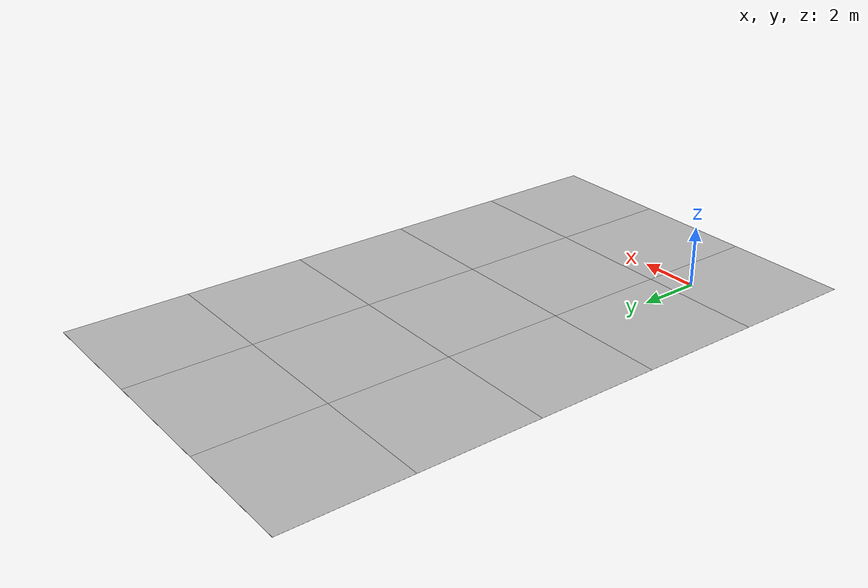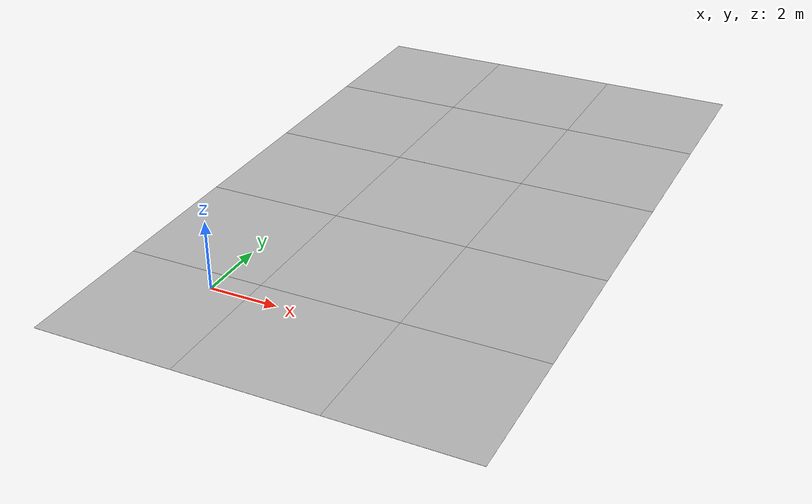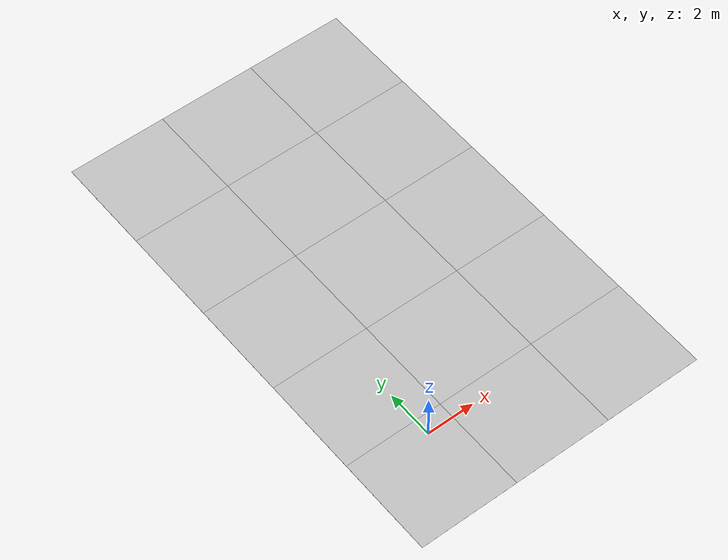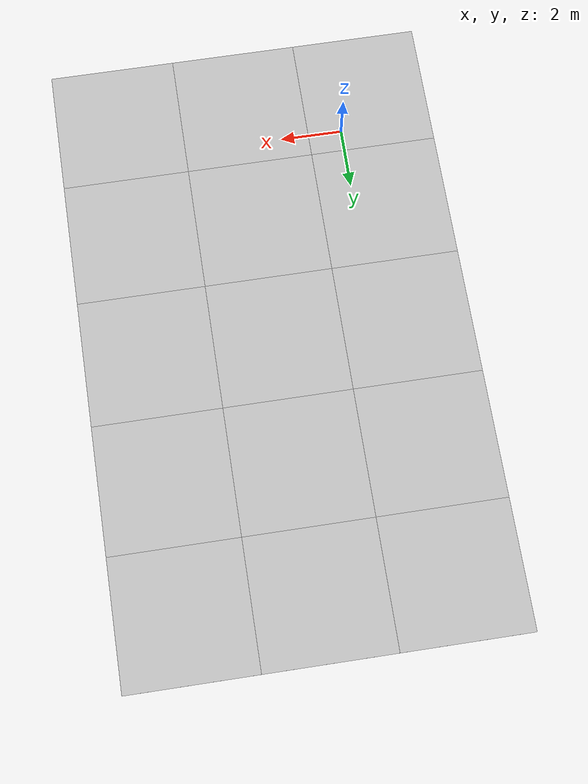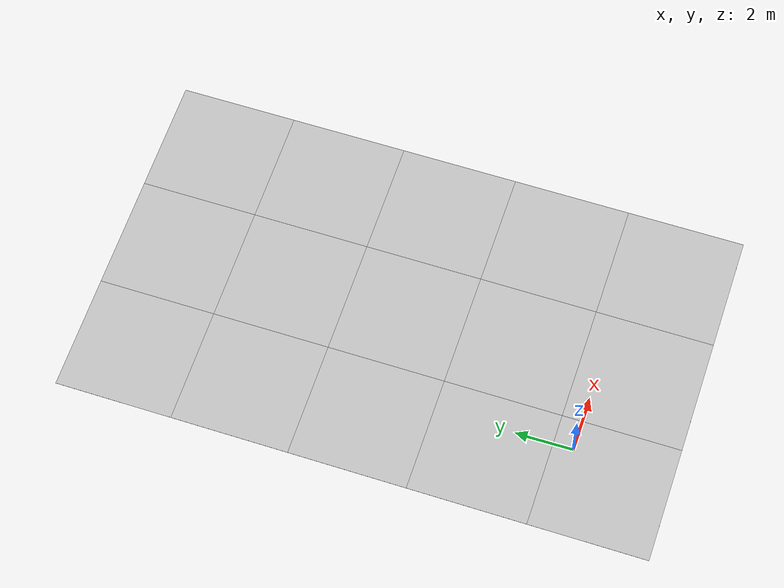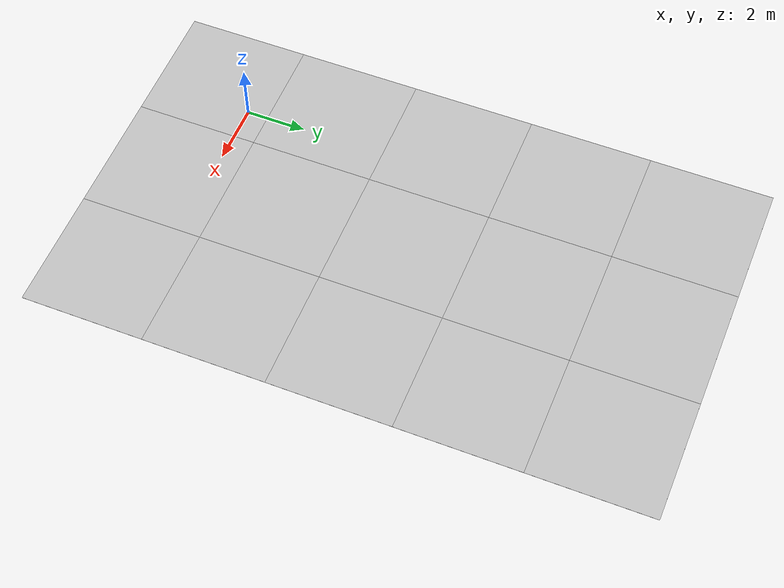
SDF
<sdf version='1.6'><world name='default'>
    <light name='sun_light' type='directional'>
      <pose frame=''>0 0 10 0 -0 0</pose>
      <diffuse>0.5 0.5 0.5 1</diffuse>
      <specular>0.1 0.1 0.1 1</specular>
      <direction>0.1 0.1 -0.9</direction>
      <attenuation>
        <range>20</range>
        <constant>0.5</constant>
        <linear>0.01</linear>
        <quadratic>0.001</quadratic>
      </attenuation>
      <cast_shadows>1</cast_shadows>
    </light>

    <model name='Tile/0-0'>
      <static>1</static>
      <link name='link'>
        <collision name='collision'>
          <geometry>
            <plane>
              <normal>0 0 1</normal>
              <size>4.096 4.096</size>
            </plane>
          </geometry>
          <surface>
            <friction>
              <ode>
                <mu>100</mu>
                <mu2>50</mu2>
              </ode>
              <torsional>
                <ode/>
              </torsional>
            </friction>
            <contact>
              <ode/>
            </contact>
            <bounce/>
          </surface>
          <max_contacts>10</max_contacts>
        </collision>
        <visual name='visual'>
          <cast_shadows>0</cast_shadows>
          <geometry>
            <plane>
              <normal>0 0 1</normal>
              <size>4.096 4.096</size>
            </plane>
          </geometry>
          <material>
            <script>
              <uri>file://materials/scripts</uri>
              <uri>file://materials/textures</uri>
              <name>Tile/d2a0822d2df9434b2a10c1df4b51959f07967b7722c4dc5c94304e16f4e1de29</name>
            </script>
          </material>
        </visual>
        <self_collide>0</self_collide>
        <enable_wind>0</enable_wind>
        <kinematic>0</kinematic>
      </link>
      <pose frame=''>-0.952 -1.3519999999999999 0 0 -0 0</pose>
    </model>

    <model name='Tile/0-1'>
      <static>1</static>
      <link name='link'>
        <collision name='collision'>
          <geometry>
            <plane>
              <normal>0 0 1</normal>
              <size>4.096 4.096</size>
            </plane>
          </geometry>
          <surface>
            <friction>
              <ode>
                <mu>100</mu>
                <mu2>50</mu2>
              </ode>
              <torsional>
                <ode/>
              </torsional>
            </friction>
            <contact>
              <ode/>
            </contact>
            <bounce/>
          </surface>
          <max_contacts>10</max_contacts>
        </collision>
        <visual name='visual'>
          <cast_shadows>0</cast_shadows>
          <geometry>
            <plane>
              <normal>0 0 1</normal>
              <size>4.096 4.096</size>
            </plane>
          </geometry>
          <material>
            <script>
              <uri>file://materials/scripts</uri>
              <uri>file://materials/textures</uri>
              <name>Tile/5eab350b8220ac9944dbdfa4ac3288c7c17e24c3bf5df0dfcf6173d64dae00a1</name>
            </script>
          </material>
        </visual>
        <self_collide>0</self_collide>
        <enable_wind>0</enable_wind>
        <kinematic>0</kinematic>
      </link>
      <pose frame=''>-0.952 2.744 0 0 -0 0</pose>
    </model>

    <model name='Tile/0-2'>
      <static>1</static>
      <link name='link'>
        <collision name='collision'>
          <geometry>
            <plane>
              <normal>0 0 1</normal>
              <size>4.096 4.096</size>
            </plane>
          </geometry>
          <surface>
            <friction>
              <ode>
                <mu>100</mu>
                <mu2>50</mu2>
              </ode>
              <torsional>
                <ode/>
              </torsional>
            </friction>
            <contact>
              <ode/>
            </contact>
            <bounce/>
          </surface>
          <max_contacts>10</max_contacts>
        </collision>
        <visual name='visual'>
          <cast_shadows>0</cast_shadows>
          <geometry>
            <plane>
              <normal>0 0 1</normal>
              <size>4.096 4.096</size>
            </plane>
          </geometry>
          <material>
            <script>
              <uri>file://materials/scripts</uri>
              <uri>file://materials/textures</uri>
              <name>Tile/5eab350b8220ac9944dbdfa4ac3288c7c17e24c3bf5df0dfcf6173d64dae00a1</name>
            </script>
          </material>
        </visual>
        <self_collide>0</self_collide>
        <enable_wind>0</enable_wind>
        <kinematic>0</kinematic>
      </link>
      <pose frame=''>-0.952 6.84 0 0 -0 0</pose>
    </model>

    <model name='Tile/0-3'>
      <static>1</static>
      <link name='link'>
        <collision name='collision'>
          <geometry>
            <plane>
              <normal>0 0 1</normal>
              <size>4.096 4.096</size>
            </plane>
          </geometry>
          <surface>
            <friction>
              <ode>
                <mu>100</mu>
                <mu2>50</mu2>
              </ode>
              <torsional>
                <ode/>
              </torsional>
            </friction>
            <contact>
              <ode/>
            </contact>
            <bounce/>
          </surface>
          <max_contacts>10</max_contacts>
        </collision>
        <visual name='visual'>
          <cast_shadows>0</cast_shadows>
          <geometry>
            <plane>
              <normal>0 0 1</normal>
              <size>4.096 4.096</size>
            </plane>
          </geometry>
          <material>
            <script>
              <uri>file://materials/scripts</uri>
              <uri>file://materials/textures</uri>
              <name>Tile/5eab350b8220ac9944dbdfa4ac3288c7c17e24c3bf5df0dfcf6173d64dae00a1</name>
            </script>
          </material>
        </visual>
        <self_collide>0</self_collide>
        <enable_wind>0</enable_wind>
        <kinematic>0</kinematic>
      </link>
      <pose frame=''>-0.952 10.936 0 0 -0 0</pose>
    </model>

    <model name='Tile/0-4'>
      <static>1</static>
      <link name='link'>
        <collision name='collision'>
          <geometry>
            <plane>
              <normal>0 0 1</normal>
              <size>4.096 4.096</size>
            </plane>
          </geometry>
          <surface>
            <friction>
              <ode>
                <mu>100</mu>
                <mu2>50</mu2>
              </ode>
              <torsional>
                <ode/>
              </torsional>
            </friction>
            <contact>
              <ode/>
            </contact>
            <bounce/>
          </surface>
          <max_contacts>10</max_contacts>
        </collision>
        <visual name='visual'>
          <cast_shadows>0</cast_shadows>
          <geometry>
            <plane>
              <normal>0 0 1</normal>
              <size>4.096 4.096</size>
            </plane>
          </geometry>
          <material>
            <script>
              <uri>file://materials/scripts</uri>
              <uri>file://materials/textures</uri>
              <name>Tile/5eab350b8220ac9944dbdfa4ac3288c7c17e24c3bf5df0dfcf6173d64dae00a1</name>
            </script>
          </material>
        </visual>
        <self_collide>0</self_collide>
        <enable_wind>0</enable_wind>
        <kinematic>0</kinematic>
      </link>
      <pose frame=''>-0.952 15.031999999999998 0 0 -0 0</pose>
    </model>

    <model name='Tile/1-0'>
      <static>1</static>
      <link name='link'>
        <collision name='collision'>
          <geometry>
            <plane>
              <normal>0 0 1</normal>
              <size>4.096 4.096</size>
            </plane>
          </geometry>
          <surface>
            <friction>
              <ode>
                <mu>100</mu>
                <mu2>50</mu2>
              </ode>
              <torsional>
                <ode/>
              </torsional>
            </friction>
            <contact>
              <ode/>
            </contact>
            <bounce/>
          </surface>
          <max_contacts>10</max_contacts>
        </collision>
        <visual name='visual'>
          <cast_shadows>0</cast_shadows>
          <geometry>
            <plane>
              <normal>0 0 1</normal>
              <size>4.096 4.096</size>
            </plane>
          </geometry>
          <material>
            <script>
              <uri>file://materials/scripts</uri>
              <uri>file://materials/textures</uri>
              <name>Tile/c496d085b051a3120c2905c103c78928e5addb77d9e1ecdbfd114c8c75557103</name>
            </script>
          </material>
        </visual>
        <self_collide>0</self_collide>
        <enable_wind>0</enable_wind>
        <kinematic>0</kinematic>
      </link>
      <pose frame=''>3.144 -1.3519999999999999 0 0 -0 0</pose>
    </model>

    <model name='Tile/1-1'>
      <static>1</static>
      <link name='link'>
        <collision name='collision'>
          <geometry>
            <plane>
              <normal>0 0 1</normal>
              <size>4.096 4.096</size>
            </plane>
          </geometry>
          <surface>
            <friction>
              <ode>
                <mu>100</mu>
                <mu2>50</mu2>
              </ode>
              <torsional>
                <ode/>
              </torsional>
            </friction>
            <contact>
              <ode/>
            </contact>
            <bounce/>
          </surface>
          <max_contacts>10</max_contacts>
        </collision>
        <visual name='visual'>
          <cast_shadows>0</cast_shadows>
          <geometry>
            <plane>
              <normal>0 0 1</normal>
              <size>4.096 4.096</size>
            </plane>
          </geometry>
          <material>
            <script>
              <uri>file://materials/scripts</uri>
              <uri>file://materials/textures</uri>
              <name>Tile/67c2a588a840dc7e3377060af5697a6f9c8e09908fcd52192d61a2cd1fdf2bdf</name>
            </script>
          </material>
        </visual>
        <self_collide>0</self_collide>
        <enable_wind>0</enable_wind>
        <kinematic>0</kinematic>
      </link>
      <pose frame=''>3.144 2.744 0 0 -0 0</pose>
    </model>

    <model name='Tile/1-2'>
      <static>1</static>
      <link name='link'>
        <collision name='collision'>
          <geometry>
            <plane>
              <normal>0 0 1</normal>
              <size>4.096 4.096</size>
            </plane>
          </geometry>
          <surface>
            <friction>
              <ode>
                <mu>100</mu>
                <mu2>50</mu2>
              </ode>
              <torsional>
                <ode/>
              </torsional>
            </friction>
            <contact>
              <ode/>
            </contact>
            <bounce/>
          </surface>
          <max_contacts>10</max_contacts>
        </collision>
        <visual name='visual'>
          <cast_shadows>0</cast_shadows>
          <geometry>
            <plane>
              <normal>0 0 1</normal>
              <size>4.096 4.096</size>
            </plane>
          </geometry>
          <material>
            <script>
              <uri>file://materials/scripts</uri>
              <uri>file://materials/textures</uri>
              <name>Tile/1f3bb3010ffb4329c7d439b7f5f6db0b1dcf5674deb145675668d4657c7e3736</name>
            </script>
          </material>
        </visual>
        <self_collide>0</self_collide>
        <enable_wind>0</enable_wind>
        <kinematic>0</kinematic>
      </link>
      <pose frame=''>3.144 6.84 0 0 -0 0</pose>
    </model>

    <model name='Tile/1-3'>
      <static>1</static>
      <link name='link'>
        <collision name='collision'>
          <geometry>
            <plane>
              <normal>0 0 1</normal>
              <size>4.096 4.096</size>
            </plane>
          </geometry>
          <surface>
            <friction>
              <ode>
                <mu>100</mu>
                <mu2>50</mu2>
              </ode>
              <torsional>
                <ode/>
              </torsional>
            </friction>
            <contact>
              <ode/>
            </contact>
            <bounce/>
          </surface>
          <max_contacts>10</max_contacts>
        </collision>
        <visual name='visual'>
          <cast_shadows>0</cast_shadows>
          <geometry>
            <plane>
              <normal>0 0 1</normal>
              <size>4.096 4.096</size>
            </plane>
          </geometry>
          <material>
            <script>
              <uri>file://materials/scripts</uri>
              <uri>file://materials/textures</uri>
              <name>Tile/227d7bfe198f9e95e3d9c134ab39485481ece90a64df6faf156a42edbcfa277a</name>
            </script>
          </material>
        </visual>
        <self_collide>0</self_collide>
        <enable_wind>0</enable_wind>
        <kinematic>0</kinematic>
      </link>
      <pose frame=''>3.144 10.936 0 0 -0 0</pose>
    </model>

    <model name='Tile/1-4'>
      <static>1</static>
      <link name='link'>
        <collision name='collision'>
          <geometry>
            <plane>
              <normal>0 0 1</normal>
              <size>4.096 4.096</size>
            </plane>
          </geometry>
          <surface>
            <friction>
              <ode>
                <mu>100</mu>
                <mu2>50</mu2>
              </ode>
              <torsional>
                <ode/>
              </torsional>
            </friction>
            <contact>
              <ode/>
            </contact>
            <bounce/>
          </surface>
          <max_contacts>10</max_contacts>
        </collision>
        <visual name='visual'>
          <cast_shadows>0</cast_shadows>
          <geometry>
            <plane>
              <normal>0 0 1</normal>
              <size>4.096 4.096</size>
            </plane>
          </geometry>
          <material>
            <script>
              <uri>file://materials/scripts</uri>
              <uri>file://materials/textures</uri>
              <name>Tile/5eab350b8220ac9944dbdfa4ac3288c7c17e24c3bf5df0dfcf6173d64dae00a1</name>
            </script>
          </material>
        </visual>
        <self_collide>0</self_collide>
        <enable_wind>0</enable_wind>
        <kinematic>0</kinematic>
      </link>
      <pose frame=''>3.144 15.031999999999998 0 0 -0 0</pose>
    </model>

    <model name='Tile/2-0'>
      <static>1</static>
      <link name='link'>
        <collision name='collision'>
          <geometry>
            <plane>
              <normal>0 0 1</normal>
              <size>4.096 4.096</size>
            </plane>
          </geometry>
          <surface>
            <friction>
              <ode>
                <mu>100</mu>
                <mu2>50</mu2>
              </ode>
              <torsional>
                <ode/>
              </torsional>
            </friction>
            <contact>
              <ode/>
            </contact>
            <bounce/>
          </surface>
          <max_contacts>10</max_contacts>
        </collision>
        <visual name='visual'>
          <cast_shadows>0</cast_shadows>
          <geometry>
            <plane>
              <normal>0 0 1</normal>
              <size>4.096 4.096</size>
            </plane>
          </geometry>
          <material>
            <script>
              <uri>file://materials/scripts</uri>
              <uri>file://materials/textures</uri>
              <name>Tile/5eab350b8220ac9944dbdfa4ac3288c7c17e24c3bf5df0dfcf6173d64dae00a1</name>
            </script>
          </material>
        </visual>
        <self_collide>0</self_collide>
        <enable_wind>0</enable_wind>
        <kinematic>0</kinematic>
      </link>
      <pose frame=''>7.24 -1.3519999999999999 0 0 -0 0</pose>
    </model>

    <model name='Tile/2-1'>
      <static>1</static>
      <link name='link'>
        <collision name='collision'>
          <geometry>
            <plane>
              <normal>0 0 1</normal>
              <size>4.096 4.096</size>
            </plane>
          </geometry>
          <surface>
            <friction>
              <ode>
                <mu>100</mu>
                <mu2>50</mu2>
              </ode>
              <torsional>
                <ode/>
              </torsional>
            </friction>
            <contact>
              <ode/>
            </contact>
            <bounce/>
          </surface>
          <max_contacts>10</max_contacts>
        </collision>
        <visual name='visual'>
          <cast_shadows>0</cast_shadows>
          <geometry>
            <plane>
              <normal>0 0 1</normal>
              <size>4.096 4.096</size>
            </plane>
          </geometry>
          <material>
            <script>
              <uri>file://materials/scripts</uri>
              <uri>file://materials/textures</uri>
              <name>Tile/f85c91b24dca57abe800160e85f31644c383cc0054742ab58b20dbec8ca4081f</name>
            </script>
          </material>
        </visual>
        <self_collide>0</self_collide>
        <enable_wind>0</enable_wind>
        <kinematic>0</kinematic>
      </link>
      <pose frame=''>7.24 2.744 0 0 -0 0</pose>
    </model>

    <model name='Tile/2-2'>
      <static>1</static>
      <link name='link'>
        <collision name='collision'>
          <geometry>
            <plane>
              <normal>0 0 1</normal>
              <size>4.096 4.096</size>
            </plane>
          </geometry>
          <surface>
            <friction>
              <ode>
                <mu>100</mu>
                <mu2>50</mu2>
              </ode>
              <torsional>
                <ode/>
              </torsional>
            </friction>
            <contact>
              <ode/>
            </contact>
            <bounce/>
          </surface>
          <max_contacts>10</max_contacts>
        </collision>
        <visual name='visual'>
          <cast_shadows>0</cast_shadows>
          <geometry>
            <plane>
              <normal>0 0 1</normal>
              <size>4.096 4.096</size>
            </plane>
          </geometry>
          <material>
            <script>
              <uri>file://materials/scripts</uri>
              <uri>file://materials/textures</uri>
              <name>Tile/5eab350b8220ac9944dbdfa4ac3288c7c17e24c3bf5df0dfcf6173d64dae00a1</name>
            </script>
          </material>
        </visual>
        <self_collide>0</self_collide>
        <enable_wind>0</enable_wind>
        <kinematic>0</kinematic>
      </link>
      <pose frame=''>7.24 6.84 0 0 -0 0</pose>
    </model>

    <model name='Tile/2-3'>
      <static>1</static>
      <link name='link'>
        <collision name='collision'>
          <geometry>
            <plane>
              <normal>0 0 1</normal>
              <size>4.096 4.096</size>
            </plane>
          </geometry>
          <surface>
            <friction>
              <ode>
                <mu>100</mu>
                <mu2>50</mu2>
              </ode>
              <torsional>
                <ode/>
              </torsional>
            </friction>
            <contact>
              <ode/>
            </contact>
            <bounce/>
          </surface>
          <max_contacts>10</max_contacts>
        </collision>
        <visual name='visual'>
          <cast_shadows>0</cast_shadows>
          <geometry>
            <plane>
              <normal>0 0 1</normal>
              <size>4.096 4.096</size>
            </plane>
          </geometry>
          <material>
            <script>
              <uri>file://materials/scripts</uri>
              <uri>file://materials/textures</uri>
              <name>Tile/5eab350b8220ac9944dbdfa4ac3288c7c17e24c3bf5df0dfcf6173d64dae00a1</name>
            </script>
          </material>
        </visual>
        <self_collide>0</self_collide>
        <enable_wind>0</enable_wind>
        <kinematic>0</kinematic>
      </link>
      <pose frame=''>7.24 10.936 0 0 -0 0</pose>
    </model>

    <model name='Tile/2-4'>
      <static>1</static>
      <link name='link'>
        <collision name='collision'>
          <geometry>
            <plane>
              <normal>0 0 1</normal>
              <size>4.096 4.096</size>
            </plane>
          </geometry>
          <surface>
            <friction>
              <ode>
                <mu>100</mu>
                <mu2>50</mu2>
              </ode>
              <torsional>
                <ode/>
              </torsional>
            </friction>
            <contact>
              <ode/>
            </contact>
            <bounce/>
          </surface>
          <max_contacts>10</max_contacts>
        </collision>
        <visual name='visual'>
          <cast_shadows>0</cast_shadows>
          <geometry>
            <plane>
              <normal>0 0 1</normal>
              <size>4.096 4.096</size>
            </plane>
          </geometry>
          <material>
            <script>
              <uri>file://materials/scripts</uri>
              <uri>file://materials/textures</uri>
              <name>Tile/5eab350b8220ac9944dbdfa4ac3288c7c17e24c3bf5df0dfcf6173d64dae00a1</name>
            </script>
          </material>
        </visual>
        <self_collide>0</self_collide>
        <enable_wind>0</enable_wind>
        <kinematic>0</kinematic>
      </link>
      <pose frame=''>7.24 15.031999999999998 0 0 -0 0</pose>
    </model>
    </world></sdf>
